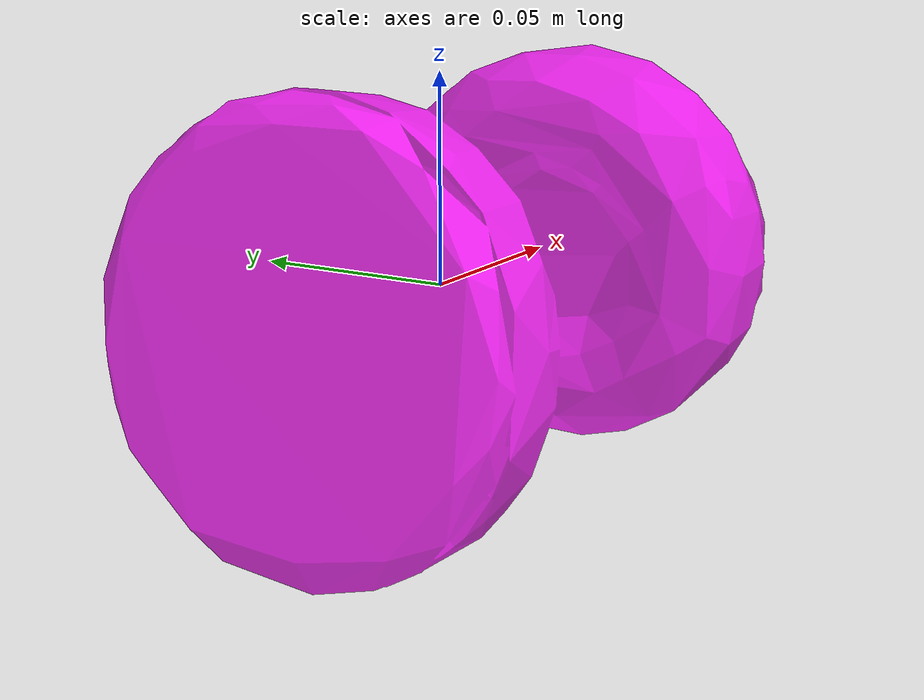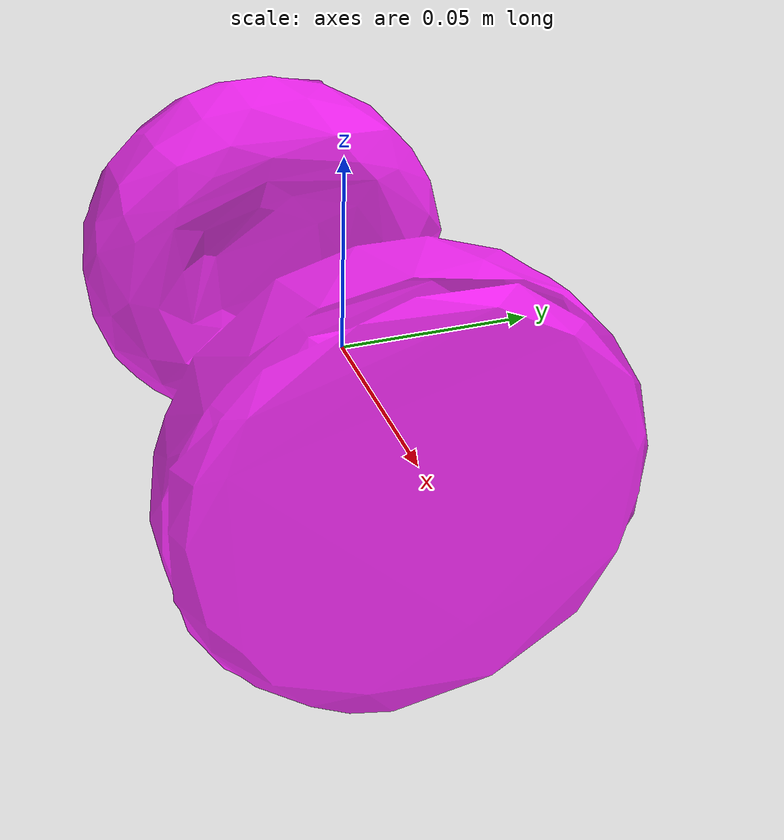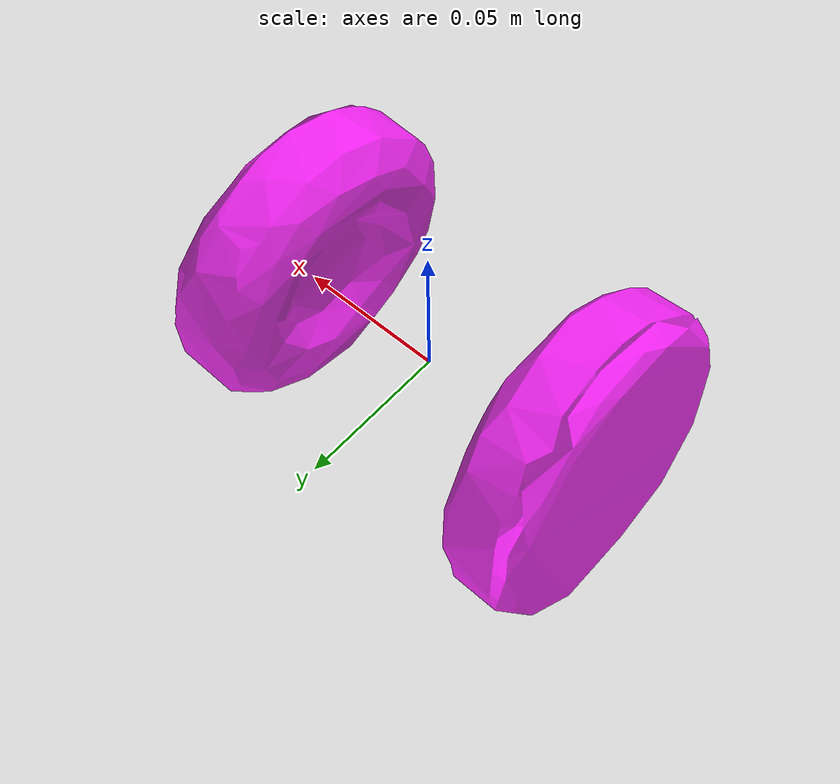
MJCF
<mujoco model="bottom_watertight_tiny">
  <default>
    <default group="2" type="mesh" contype="0" conaffinity="0">
      <geom group="2" type="mesh" contype="0" conaffinity="0"/>
    </default>
    <default group="3" type="mesh">
      <geom group="3" type="mesh"/>
    </default>
  </default>
  <asset>
    <mesh file="bottom_watertight_tiny.obj"/>
    <mesh file="bottom_watertight_tiny_collision_0.obj"/>
    <mesh file="bottom_watertight_tiny_collision_1.obj"/>
    <mesh file="bottom_watertight_tiny_collision_2.obj"/>
    <mesh file="bottom_watertight_tiny_collision_3.obj"/>
    <mesh file="bottom_watertight_tiny_collision_4.obj"/>
    <mesh file="bottom_watertight_tiny_collision_5.obj"/>
    <mesh file="bottom_watertight_tiny_collision_6.obj"/>
    <mesh file="bottom_watertight_tiny_collision_7.obj"/>
    <mesh file="bottom_watertight_tiny_collision_8.obj"/>
    <mesh file="bottom_watertight_tiny_collision_9.obj"/>
    <mesh file="bottom_watertight_tiny_collision_10.obj"/>
    <mesh file="bottom_watertight_tiny_collision_11.obj"/>
    <mesh file="bottom_watertight_tiny_collision_12.obj"/>
    <mesh file="bottom_watertight_tiny_collision_13.obj"/>
    <mesh file="bottom_watertight_tiny_collision_14.obj"/>
    <mesh file="bottom_watertight_tiny_collision_15.obj"/>
    <mesh file="bottom_watertight_tiny_collision_16.obj"/>
    <mesh file="bottom_watertight_tiny_collision_17.obj"/>
    <mesh file="bottom_watertight_tiny_collision_18.obj"/>
    <mesh file="bottom_watertight_tiny_collision_19.obj"/>
    <mesh file="bottom_watertight_tiny_collision_20.obj"/>
    <mesh file="bottom_watertight_tiny_collision_21.obj"/>
    <mesh file="bottom_watertight_tiny_collision_22.obj"/>
    <mesh file="bottom_watertight_tiny_collision_23.obj"/>
    <mesh file="bottom_watertight_tiny_collision_24.obj"/>
    <mesh file="bottom_watertight_tiny_collision_25.obj"/>
    <mesh file="bottom_watertight_tiny_collision_26.obj"/>
    <mesh file="bottom_watertight_tiny_collision_27.obj"/>
    <mesh file="bottom_watertight_tiny_collision_28.obj"/>
    <mesh file="bottom_watertight_tiny_collision_29.obj"/>
    <mesh file="bottom_watertight_tiny_collision_30.obj"/>
    <mesh file="bottom_watertight_tiny_collision_31.obj"/>
    <mesh file="bottom_watertight_tiny_collision_32.obj"/>
    <mesh file="bottom_watertight_tiny_collision_33.obj"/>
    <mesh file="bottom_watertight_tiny_collision_34.obj"/>
    <mesh file="bottom_watertight_tiny_collision_35.obj"/>
    <mesh file="bottom_watertight_tiny_collision_36.obj"/>
    <mesh file="bottom_watertight_tiny_collision_37.obj"/>
    <mesh file="bottom_watertight_tiny_collision_38.obj"/>
    <mesh file="bottom_watertight_tiny_collision_39.obj"/>
    <mesh file="bottom_watertight_tiny_collision_40.obj"/>
    <mesh file="bottom_watertight_tiny_collision_41.obj"/>
    <mesh file="bottom_watertight_tiny_collision_42.obj"/>
    <mesh file="bottom_watertight_tiny_collision_43.obj"/>
    <mesh file="bottom_watertight_tiny_collision_44.obj"/>
    <mesh file="bottom_watertight_tiny_collision_45.obj"/>
    <mesh file="bottom_watertight_tiny_collision_46.obj"/>
    <mesh file="bottom_watertight_tiny_collision_47.obj"/>
    <mesh file="bottom_watertight_tiny_collision_48.obj"/>
    <mesh file="bottom_watertight_tiny_collision_49.obj"/>
    <mesh file="bottom_watertight_tiny_collision_50.obj"/>
    <mesh file="bottom_watertight_tiny_collision_51.obj"/>
    <mesh file="bottom_watertight_tiny_collision_52.obj"/>
    <mesh file="bottom_watertight_tiny_collision_53.obj"/>
    <mesh file="bottom_watertight_tiny_collision_54.obj"/>
    <mesh file="bottom_watertight_tiny_collision_55.obj"/>
    <mesh file="bottom_watertight_tiny_collision_56.obj"/>
    <mesh file="bottom_watertight_tiny_collision_57.obj"/>
    <mesh file="bottom_watertight_tiny_collision_58.obj"/>
    <mesh file="bottom_watertight_tiny_collision_59.obj"/>
    <mesh file="bottom_watertight_tiny_collision_60.obj"/>
    <mesh file="bottom_watertight_tiny_collision_61.obj"/>
    <mesh file="bottom_watertight_tiny_collision_62.obj"/>
    <mesh file="bottom_watertight_tiny_collision_63.obj"/>
    <mesh file="bottom_watertight_tiny_collision_64.obj"/>
    <mesh file="bottom_watertight_tiny_collision_65.obj"/>
    <mesh file="bottom_watertight_tiny_collision_66.obj"/>
    <mesh file="bottom_watertight_tiny_collision_67.obj"/>
    <mesh file="bottom_watertight_tiny_collision_68.obj"/>
    <mesh file="bottom_watertight_tiny_collision_69.obj"/>
    <mesh file="bottom_watertight_tiny_collision_70.obj"/>
    <mesh file="bottom_watertight_tiny_collision_71.obj"/>
    <mesh file="bottom_watertight_tiny_collision_72.obj"/>
    <mesh file="bottom_watertight_tiny_collision_73.obj"/>
    <mesh file="bottom_watertight_tiny_collision_74.obj"/>
    <mesh file="bottom_watertight_tiny_collision_75.obj"/>
    <mesh file="bottom_watertight_tiny_collision_76.obj"/>
    <mesh file="bottom_watertight_tiny_collision_77.obj"/>
    <mesh file="bottom_watertight_tiny_collision_78.obj"/>
    <mesh file="bottom_watertight_tiny_collision_79.obj"/>
    <mesh file="bottom_watertight_tiny_collision_80.obj"/>
    <mesh file="bottom_watertight_tiny_collision_81.obj"/>
    <mesh file="bottom_watertight_tiny_collision_82.obj"/>
    <mesh file="bottom_watertight_tiny_collision_83.obj"/>
    <mesh file="bottom_watertight_tiny_collision_84.obj"/>
    <mesh file="bottom_watertight_tiny_collision_85.obj"/>
    <mesh file="bottom_watertight_tiny_collision_86.obj"/>
    <mesh file="bottom_watertight_tiny_collision_87.obj"/>
    <mesh file="bottom_watertight_tiny_collision_88.obj"/>
    <mesh file="bottom_watertight_tiny_collision_89.obj"/>
    <mesh file="bottom_watertight_tiny_collision_90.obj"/>
    <mesh file="bottom_watertight_tiny_collision_91.obj"/>
    <mesh file="bottom_watertight_tiny_collision_92.obj"/>
    <mesh file="bottom_watertight_tiny_collision_93.obj"/>
    <mesh file="bottom_watertight_tiny_collision_94.obj"/>
    <mesh file="bottom_watertight_tiny_collision_95.obj"/>
    <mesh file="bottom_watertight_tiny_collision_96.obj"/>
    <mesh file="bottom_watertight_tiny_collision_97.obj"/>
    <mesh file="bottom_watertight_tiny_collision_98.obj"/>
    <mesh file="bottom_watertight_tiny_collision_99.obj"/>
    <mesh file="bottom_watertight_tiny_collision_100.obj"/>
    <mesh file="bottom_watertight_tiny_collision_101.obj"/>
    <mesh file="bottom_watertight_tiny_collision_102.obj"/>
    <mesh file="bottom_watertight_tiny_collision_103.obj"/>
    <mesh file="bottom_watertight_tiny_collision_104.obj"/>
    <mesh file="bottom_watertight_tiny_collision_105.obj"/>
    <mesh file="bottom_watertight_tiny_collision_106.obj"/>
    <mesh file="bottom_watertight_tiny_collision_107.obj"/>
    <mesh file="bottom_watertight_tiny_collision_108.obj"/>
    <mesh file="bottom_watertight_tiny_collision_109.obj"/>
    <mesh file="bottom_watertight_tiny_collision_110.obj"/>
    <mesh file="bottom_watertight_tiny_collision_111.obj"/>
    <mesh file="bottom_watertight_tiny_collision_112.obj"/>
    <mesh file="bottom_watertight_tiny_collision_113.obj"/>
    <mesh file="bottom_watertight_tiny_collision_114.obj"/>
    <mesh file="bottom_watertight_tiny_collision_115.obj"/>
    <mesh file="bottom_watertight_tiny_collision_116.obj"/>
    <mesh file="bottom_watertight_tiny_collision_117.obj"/>
    <mesh file="bottom_watertight_tiny_collision_118.obj"/>
    <mesh file="bottom_watertight_tiny_collision_119.obj"/>
    <mesh file="bottom_watertight_tiny_collision_120.obj"/>
    <mesh file="bottom_watertight_tiny_collision_121.obj"/>
    <mesh file="bottom_watertight_tiny_collision_122.obj"/>
    <mesh file="bottom_watertight_tiny_collision_123.obj"/>
    <mesh file="bottom_watertight_tiny_collision_124.obj"/>
    <mesh file="bottom_watertight_tiny_collision_125.obj"/>
    <mesh file="bottom_watertight_tiny_collision_126.obj"/>
    <mesh file="bottom_watertight_tiny_collision_127.obj"/>
    <mesh file="bottom_watertight_tiny_collision_128.obj"/>
    <mesh file="bottom_watertight_tiny_collision_129.obj"/>
    <mesh file="bottom_watertight_tiny_collision_130.obj"/>
    <mesh file="bottom_watertight_tiny_collision_131.obj"/>
    <mesh file="bottom_watertight_tiny_collision_132.obj"/>
    <mesh file="bottom_watertight_tiny_collision_133.obj"/>
    <mesh file="bottom_watertight_tiny_collision_134.obj"/>
    <mesh file="bottom_watertight_tiny_collision_135.obj"/>
  </asset>
  <worldbody>
    <body name="bottom_watertight_tiny">
      <freejoint/>
      <geom mesh="bottom_watertight_tiny" group="2" type="mesh" rgba="1 0 1 0.8" contype="0" conaffinity="0"/>
      <geom mesh="bottom_watertight_tiny_collision_0" rgba="0.343983961661921 0.8265252202562995 0.13284787692748856 1" group="3" type="mesh"/>
      <geom mesh="bottom_watertight_tiny_collision_1" rgba="0.3194055916005605 0.8057906767615574 0.8803331639467502 1" group="3" type="mesh"/>
      <geom mesh="bottom_watertight_tiny_collision_2" rgba="0.7855915020937909 0.9714109539470092 0.8338949052306774 1" group="3" type="mesh"/>
      <geom mesh="bottom_watertight_tiny_collision_3" rgba="0.8930281943021798 0.05415432223553929 0.03153233702283886 1" group="3" type="mesh"/>
      <geom mesh="bottom_watertight_tiny_collision_4" rgba="0.08708408160782599 0.2864046861939905 0.2717874603109256 1" group="3" type="mesh"/>
      <geom mesh="bottom_watertight_tiny_collision_5" rgba="0.7207351785391303 0.6435978758937029 0.4643230739372236 1" group="3" type="mesh"/>
      <geom mesh="bottom_watertight_tiny_collision_6" rgba="0.3750963646015647 0.8725637275187305 0.7862124608952091 1" group="3" type="mesh"/>
      <geom mesh="bottom_watertight_tiny_collision_7" rgba="0.2613527370169043 0.9032502995505594 0.3412458997021669 1" group="3" type="mesh"/>
      <geom mesh="bottom_watertight_tiny_collision_8" rgba="0.35013783934831 0.6737606481972477 0.6890655871196877 1" group="3" type="mesh"/>
      <geom mesh="bottom_watertight_tiny_collision_9" rgba="0.04668471114255135 0.7795732560623482 0.7597667862949882 1" group="3" type="mesh"/>
      <geom mesh="bottom_watertight_tiny_collision_10" rgba="0.7688320833598374 0.329861286168055 0.7407011338129389 1" group="3" type="mesh"/>
      <geom mesh="bottom_watertight_tiny_collision_11" rgba="0.21427164311836255 0.13566087382938985 0.04009118134443135 1" group="3" type="mesh"/>
      <geom mesh="bottom_watertight_tiny_collision_12" rgba="0.9636389173730365 0.5011324578945223 0.6240546535725233 1" group="3" type="mesh"/>
      <geom mesh="bottom_watertight_tiny_collision_13" rgba="0.08919720477961357 0.9080392404710729 0.28706429121932875 1" group="3" type="mesh"/>
      <geom mesh="bottom_watertight_tiny_collision_14" rgba="0.03014970687095908 0.24169888326492206 0.3912231486107558 1" group="3" type="mesh"/>
      <geom mesh="bottom_watertight_tiny_collision_15" rgba="0.8986278561609606 0.37876300768715876 0.11162276914907787 1" group="3" type="mesh"/>
      <geom mesh="bottom_watertight_tiny_collision_16" rgba="0.15689793007886377 0.5676848878055039 0.3238288627020136 1" group="3" type="mesh"/>
      <geom mesh="bottom_watertight_tiny_collision_17" rgba="0.9685830070657376 0.0628198187548119 0.9488883277485496 1" group="3" type="mesh"/>
      <geom mesh="bottom_watertight_tiny_collision_18" rgba="0.5912275863034104 0.2908098157292448 0.26868654033489525 1" group="3" type="mesh"/>
      <geom mesh="bottom_watertight_tiny_collision_19" rgba="0.7176323415879392 0.557154299448974 0.7406940553999988 1" group="3" type="mesh"/>
      <geom mesh="bottom_watertight_tiny_collision_20" rgba="0.9841576436874294 0.4332284643496388 0.15638359361309306 1" group="3" type="mesh"/>
      <geom mesh="bottom_watertight_tiny_collision_21" rgba="0.6180613364201043 0.8198999623044012 0.2385574639140352 1" group="3" type="mesh"/>
      <geom mesh="bottom_watertight_tiny_collision_22" rgba="0.5967332002963099 0.891926396280934 0.6228813851339599 1" group="3" type="mesh"/>
      <geom mesh="bottom_watertight_tiny_collision_23" rgba="0.19547715709992475 0.7591739261729155 0.08604754322445529 1" group="3" type="mesh"/>
      <geom mesh="bottom_watertight_tiny_collision_24" rgba="0.9881510929176015 0.5748738801166149 0.46247548955789075 1" group="3" type="mesh"/>
      <geom mesh="bottom_watertight_tiny_collision_25" rgba="0.29468966582807155 0.6426619157699964 0.7095125326873261 1" group="3" type="mesh"/>
      <geom mesh="bottom_watertight_tiny_collision_26" rgba="0.20347465347506988 0.2511761597584564 0.3405812511413626 1" group="3" type="mesh"/>
      <geom mesh="bottom_watertight_tiny_collision_27" rgba="0.8918875804122384 0.929462734676355 0.4938376579568421 1" group="3" type="mesh"/>
      <geom mesh="bottom_watertight_tiny_collision_28" rgba="0.38147852034724394 0.6293185856104611 0.7201055217412289 1" group="3" type="mesh"/>
      <geom mesh="bottom_watertight_tiny_collision_29" rgba="0.7414846510346782 0.17562720039738045 0.48250096685291655 1" group="3" type="mesh"/>
      <geom mesh="bottom_watertight_tiny_collision_30" rgba="0.037205647956975785 0.10340449655801487 0.6615296692783991 1" group="3" type="mesh"/>
      <geom mesh="bottom_watertight_tiny_collision_31" rgba="0.9297801146355822 0.46801553846129074 0.2347411326234492 1" group="3" type="mesh"/>
      <geom mesh="bottom_watertight_tiny_collision_32" rgba="0.7420490912608247 0.09550641539302396 0.7304489483119625 1" group="3" type="mesh"/>
      <geom mesh="bottom_watertight_tiny_collision_33" rgba="0.9038308333753271 0.9420714528040767 0.844773614726547 1" group="3" type="mesh"/>
      <geom mesh="bottom_watertight_tiny_collision_34" rgba="0.42024829532081176 0.8448945812810347 0.6831909471245721 1" group="3" type="mesh"/>
      <geom mesh="bottom_watertight_tiny_collision_35" rgba="0.05427756847877907 0.42814089340868633 0.3926643461886279 1" group="3" type="mesh"/>
      <geom mesh="bottom_watertight_tiny_collision_36" rgba="0.7471367519218315 0.23319174011938604 0.22045243034629058 1" group="3" type="mesh"/>
      <geom mesh="bottom_watertight_tiny_collision_37" rgba="0.07522603507721615 0.8707260205058809 0.4994422474077431 1" group="3" type="mesh"/>
      <geom mesh="bottom_watertight_tiny_collision_38" rgba="0.6172914369171891 0.6508378482415212 0.45172850227155303 1" group="3" type="mesh"/>
      <geom mesh="bottom_watertight_tiny_collision_39" rgba="0.9185001559655113 0.8516851029942348 0.9420075317591242 1" group="3" type="mesh"/>
      <geom mesh="bottom_watertight_tiny_collision_40" rgba="0.034863621607103656 0.8782419890039975 0.9127873819220924 1" group="3" type="mesh"/>
      <geom mesh="bottom_watertight_tiny_collision_41" rgba="0.33120616220464527 0.8323354954987767 0.4498934354065097 1" group="3" type="mesh"/>
      <geom mesh="bottom_watertight_tiny_collision_42" rgba="0.49000874270299466 0.010144308319176232 0.8788787672628716 1" group="3" type="mesh"/>
      <geom mesh="bottom_watertight_tiny_collision_43" rgba="0.5752265849391425 0.5585089375048772 0.09215530008360273 1" group="3" type="mesh"/>
      <geom mesh="bottom_watertight_tiny_collision_44" rgba="0.7019140877193115 0.2298688722353629 0.17683810086558338 1" group="3" type="mesh"/>
      <geom mesh="bottom_watertight_tiny_collision_45" rgba="0.39298100881531073 0.3431067080501776 0.6496507542508466 1" group="3" type="mesh"/>
      <geom mesh="bottom_watertight_tiny_collision_46" rgba="0.5715024183196362 0.6397382500797486 0.5403481083438465 1" group="3" type="mesh"/>
      <geom mesh="bottom_watertight_tiny_collision_47" rgba="0.7305296258952038 0.5351263117981852 0.017336988743503867 1" group="3" type="mesh"/>
      <geom mesh="bottom_watertight_tiny_collision_48" rgba="0.05459667205951568 0.08834279104849097 0.5093282732739031 1" group="3" type="mesh"/>
      <geom mesh="bottom_watertight_tiny_collision_49" rgba="0.30103752217655566 0.7980337660127775 0.8251304310997974 1" group="3" type="mesh"/>
      <geom mesh="bottom_watertight_tiny_collision_50" rgba="0.3607437438385136 0.05134278481681287 0.08998311444777285 1" group="3" type="mesh"/>
      <geom mesh="bottom_watertight_tiny_collision_51" rgba="0.35423885947232514 0.27247573530469393 0.7289626229888108 1" group="3" type="mesh"/>
      <geom mesh="bottom_watertight_tiny_collision_52" rgba="0.370055666948351 0.9892515638785715 0.392899317711666 1" group="3" type="mesh"/>
      <geom mesh="bottom_watertight_tiny_collision_53" rgba="0.4044292570895527 0.47311105830389166 0.1388221328895045 1" group="3" type="mesh"/>
      <geom mesh="bottom_watertight_tiny_collision_54" rgba="0.09176018267660957 0.09339533799083477 0.4374945914822779 1" group="3" type="mesh"/>
      <geom mesh="bottom_watertight_tiny_collision_55" rgba="0.5461388532312813 0.016759595186619847 0.7254361092180271 1" group="3" type="mesh"/>
      <geom mesh="bottom_watertight_tiny_collision_56" rgba="0.1235489290474433 0.9108297872710988 0.45252421127716735 1" group="3" type="mesh"/>
      <geom mesh="bottom_watertight_tiny_collision_57" rgba="0.26495956018594147 0.3167515735302755 0.811385928390581 1" group="3" type="mesh"/>
      <geom mesh="bottom_watertight_tiny_collision_58" rgba="0.7341685185789193 0.3850037409557481 0.8095261439489876 1" group="3" type="mesh"/>
      <geom mesh="bottom_watertight_tiny_collision_59" rgba="0.452623311735038 0.6136775086241901 0.801542387412665 1" group="3" type="mesh"/>
      <geom mesh="bottom_watertight_tiny_collision_60" rgba="0.4986501059467717 0.021242144926344686 0.47719922416560734 1" group="3" type="mesh"/>
      <geom mesh="bottom_watertight_tiny_collision_61" rgba="0.131289195871634 0.02084726582356744 0.1890237123558176 1" group="3" type="mesh"/>
      <geom mesh="bottom_watertight_tiny_collision_62" rgba="0.07764451143493545 0.6218834774228826 0.509910569156977 1" group="3" type="mesh"/>
      <geom mesh="bottom_watertight_tiny_collision_63" rgba="0.5052857661489365 0.4067009790725342 0.5690731962195783 1" group="3" type="mesh"/>
      <geom mesh="bottom_watertight_tiny_collision_64" rgba="0.18385737515191836 0.4434461968688467 0.677160788574089 1" group="3" type="mesh"/>
      <geom mesh="bottom_watertight_tiny_collision_65" rgba="0.15133791833799848 0.9230941027242578 0.10735012138268951 1" group="3" type="mesh"/>
      <geom mesh="bottom_watertight_tiny_collision_66" rgba="0.5099988959236318 0.07698933820598042 0.0850779869125019 1" group="3" type="mesh"/>
      <geom mesh="bottom_watertight_tiny_collision_67" rgba="0.167397893186229 0.8218893867466305 0.9545686591057811 1" group="3" type="mesh"/>
      <geom mesh="bottom_watertight_tiny_collision_68" rgba="0.8069877112675083 0.5945218555556843 0.6346009905650394 1" group="3" type="mesh"/>
      <geom mesh="bottom_watertight_tiny_collision_69" rgba="0.31376348952320066 0.1300711560650457 0.7654040944051737 1" group="3" type="mesh"/>
      <geom mesh="bottom_watertight_tiny_collision_70" rgba="0.252749179030194 0.9084643273155428 0.4321187457033001 1" group="3" type="mesh"/>
      <geom mesh="bottom_watertight_tiny_collision_71" rgba="0.6443258537093467 0.947664783877765 0.6854675973528076 1" group="3" type="mesh"/>
      <geom mesh="bottom_watertight_tiny_collision_72" rgba="0.8873241535690932 0.9562115097711552 0.9376440791565502 1" group="3" type="mesh"/>
      <geom mesh="bottom_watertight_tiny_collision_73" rgba="0.8492830563653951 0.21282425983235942 0.45980272035196545 1" group="3" type="mesh"/>
      <geom mesh="bottom_watertight_tiny_collision_74" rgba="0.6066571561413728 0.62725432484941 0.2973354717655846 1" group="3" type="mesh"/>
      <geom mesh="bottom_watertight_tiny_collision_75" rgba="0.9141105639467875 0.4404567878436273 0.8534746495232746 1" group="3" type="mesh"/>
      <geom mesh="bottom_watertight_tiny_collision_76" rgba="0.9719167992671613 0.4972695560742739 0.8234460186802197 1" group="3" type="mesh"/>
      <geom mesh="bottom_watertight_tiny_collision_77" rgba="0.6928089461263429 0.40925381874516653 0.3895107509980198 1" group="3" type="mesh"/>
      <geom mesh="bottom_watertight_tiny_collision_78" rgba="0.5554193998854674 0.6098015098208202 0.7165191012465035 1" group="3" type="mesh"/>
      <geom mesh="bottom_watertight_tiny_collision_79" rgba="0.04649745578972109 0.6192924444221228 0.03448541996185883 1" group="3" type="mesh"/>
      <geom mesh="bottom_watertight_tiny_collision_80" rgba="0.5067363067447064 0.43091404213856865 0.2944141459135097 1" group="3" type="mesh"/>
      <geom mesh="bottom_watertight_tiny_collision_81" rgba="0.05373044386657322 0.31160853478220085 0.6704817983799953 1" group="3" type="mesh"/>
      <geom mesh="bottom_watertight_tiny_collision_82" rgba="0.04311798590876981 0.3404953875303851 0.47649416892334706 1" group="3" type="mesh"/>
      <geom mesh="bottom_watertight_tiny_collision_83" rgba="0.6326948969439136 0.12942544244269094 0.6520854243172629 1" group="3" type="mesh"/>
      <geom mesh="bottom_watertight_tiny_collision_84" rgba="0.17132317517340045 0.04931769964823984 0.9899046865843792 1" group="3" type="mesh"/>
      <geom mesh="bottom_watertight_tiny_collision_85" rgba="0.1549655274567927 0.6967942226159801 0.3333350089326965 1" group="3" type="mesh"/>
      <geom mesh="bottom_watertight_tiny_collision_86" rgba="0.13471145517938732 0.1020746715655848 0.4260935085994072 1" group="3" type="mesh"/>
      <geom mesh="bottom_watertight_tiny_collision_87" rgba="0.03046985357123333 0.6933891060188054 0.7455132172539455 1" group="3" type="mesh"/>
      <geom mesh="bottom_watertight_tiny_collision_88" rgba="0.8381630428225416 0.32636849136945045 0.02127926089858312 1" group="3" type="mesh"/>
      <geom mesh="bottom_watertight_tiny_collision_89" rgba="0.1752996313613855 0.02735742831406529 0.939836424503685 1" group="3" type="mesh"/>
      <geom mesh="bottom_watertight_tiny_collision_90" rgba="0.33392152990768853 0.028249497761380082 0.7503062748366564 1" group="3" type="mesh"/>
      <geom mesh="bottom_watertight_tiny_collision_91" rgba="0.4998629175779946 0.39074904686220135 0.5940266049946968 1" group="3" type="mesh"/>
      <geom mesh="bottom_watertight_tiny_collision_92" rgba="0.2125725490200705 0.7228324905808494 0.803042290339224 1" group="3" type="mesh"/>
      <geom mesh="bottom_watertight_tiny_collision_93" rgba="0.7770566745734663 0.8296294703692659 0.20665387500863142 1" group="3" type="mesh"/>
      <geom mesh="bottom_watertight_tiny_collision_94" rgba="0.3306356814870398 0.2258652585050197 0.08399257260029025 1" group="3" type="mesh"/>
      <geom mesh="bottom_watertight_tiny_collision_95" rgba="0.8367592890466918 0.5605388375140964 0.21517779638215662 1" group="3" type="mesh"/>
      <geom mesh="bottom_watertight_tiny_collision_96" rgba="0.7973260869962162 0.4008275190138747 0.5199815595204811 1" group="3" type="mesh"/>
      <geom mesh="bottom_watertight_tiny_collision_97" rgba="0.07549639355581339 0.7468493549706224 0.18433331117459328 1" group="3" type="mesh"/>
      <geom mesh="bottom_watertight_tiny_collision_98" rgba="0.49780226960015905 0.6032786727648081 0.1924597449833494 1" group="3" type="mesh"/>
      <geom mesh="bottom_watertight_tiny_collision_99" rgba="0.5568411461784792 0.3053992537486627 0.4915364287033164 1" group="3" type="mesh"/>
      <geom mesh="bottom_watertight_tiny_collision_100" rgba="0.44408317578626866 0.08842204140835164 0.4103265602406415 1" group="3" type="mesh"/>
      <geom mesh="bottom_watertight_tiny_collision_101" rgba="0.37642656251731677 0.2591800206851542 0.5254722152431238 1" group="3" type="mesh"/>
      <geom mesh="bottom_watertight_tiny_collision_102" rgba="0.7466041389946468 0.6794616069244752 0.07916414547749906 1" group="3" type="mesh"/>
      <geom mesh="bottom_watertight_tiny_collision_103" rgba="0.07771381230671437 0.31082684874670374 0.42278551592135294 1" group="3" type="mesh"/>
      <geom mesh="bottom_watertight_tiny_collision_104" rgba="0.4656591852629982 0.16110187554361433 0.7917356009530485 1" group="3" type="mesh"/>
      <geom mesh="bottom_watertight_tiny_collision_105" rgba="0.8111642557695391 0.6002134073192904 0.4809402999442465 1" group="3" type="mesh"/>
      <geom mesh="bottom_watertight_tiny_collision_106" rgba="0.39330483513549563 0.05731984852749661 0.724913023147893 1" group="3" type="mesh"/>
      <geom mesh="bottom_watertight_tiny_collision_107" rgba="0.8650385829468428 0.8212099551085483 0.09375200555698993 1" group="3" type="mesh"/>
      <geom mesh="bottom_watertight_tiny_collision_108" rgba="0.362269472958751 0.36557584575585067 0.37966914132536833 1" group="3" type="mesh"/>
      <geom mesh="bottom_watertight_tiny_collision_109" rgba="0.6837782049809514 0.7569218108013136 0.7500872897948806 1" group="3" type="mesh"/>
      <geom mesh="bottom_watertight_tiny_collision_110" rgba="0.06634898358174313 0.3881423434775272 0.1620363495209176 1" group="3" type="mesh"/>
      <geom mesh="bottom_watertight_tiny_collision_111" rgba="0.22812405060895258 0.7644438366293128 0.0801647217006447 1" group="3" type="mesh"/>
      <geom mesh="bottom_watertight_tiny_collision_112" rgba="0.5235514804194696 0.7750603721455835 0.8188376170123333 1" group="3" type="mesh"/>
      <geom mesh="bottom_watertight_tiny_collision_113" rgba="0.019469849768637304 0.339076767015421 0.3059235798137484 1" group="3" type="mesh"/>
      <geom mesh="bottom_watertight_tiny_collision_114" rgba="0.7142293598171261 0.012545141902627455 0.9341116303573537 1" group="3" type="mesh"/>
      <geom mesh="bottom_watertight_tiny_collision_115" rgba="0.9535606939531343 0.5919021775227225 0.7923585233901519 1" group="3" type="mesh"/>
      <geom mesh="bottom_watertight_tiny_collision_116" rgba="0.1606251869787405 0.5281831776242232 0.2866365552674639 1" group="3" type="mesh"/>
      <geom mesh="bottom_watertight_tiny_collision_117" rgba="0.9815903813632405 0.26124649485462903 0.9861540858834384 1" group="3" type="mesh"/>
      <geom mesh="bottom_watertight_tiny_collision_118" rgba="0.9411832586941719 0.9238337276209665 0.005220150010616598 1" group="3" type="mesh"/>
      <geom mesh="bottom_watertight_tiny_collision_119" rgba="0.8139768834857664 0.7822351643672874 0.1491629056348338 1" group="3" type="mesh"/>
      <geom mesh="bottom_watertight_tiny_collision_120" rgba="0.5862756975061423 0.32675434030573103 0.03704139739995993 1" group="3" type="mesh"/>
      <geom mesh="bottom_watertight_tiny_collision_121" rgba="0.922226672897054 0.838614093415591 0.39195697633917737 1" group="3" type="mesh"/>
      <geom mesh="bottom_watertight_tiny_collision_122" rgba="0.4737516825129918 0.5178145737433792 0.22890269008622 1" group="3" type="mesh"/>
      <geom mesh="bottom_watertight_tiny_collision_123" rgba="0.6863919888027747 0.3228181125970453 0.5457025347453524 1" group="3" type="mesh"/>
      <geom mesh="bottom_watertight_tiny_collision_124" rgba="0.7955264674828039 0.5446923131523423 0.7627171981886471 1" group="3" type="mesh"/>
      <geom mesh="bottom_watertight_tiny_collision_125" rgba="0.8623708508233127 0.9907235226298313 0.9798631203851209 1" group="3" type="mesh"/>
      <geom mesh="bottom_watertight_tiny_collision_126" rgba="0.5790965429628854 0.9127643412454346 0.249128149959574 1" group="3" type="mesh"/>
      <geom mesh="bottom_watertight_tiny_collision_127" rgba="0.5297062473156927 0.5754706765869922 0.9760156887140093 1" group="3" type="mesh"/>
      <geom mesh="bottom_watertight_tiny_collision_128" rgba="0.9304539920971842 0.0626842578970247 0.3070646243243782 1" group="3" type="mesh"/>
      <geom mesh="bottom_watertight_tiny_collision_129" rgba="0.3435146158369017 0.35025323173301204 0.9926928331574109 1" group="3" type="mesh"/>
      <geom mesh="bottom_watertight_tiny_collision_130" rgba="0.5793053590492788 0.8228920840625863 0.3505739023047345 1" group="3" type="mesh"/>
      <geom mesh="bottom_watertight_tiny_collision_131" rgba="0.4764692532422887 0.26855758191785883 0.7170939510451222 1" group="3" type="mesh"/>
      <geom mesh="bottom_watertight_tiny_collision_132" rgba="0.1072736370161379 0.39611245515577664 0.8854953449669796 1" group="3" type="mesh"/>
      <geom mesh="bottom_watertight_tiny_collision_133" rgba="0.3882493443375613 0.4463379829932964 0.3760798122412803 1" group="3" type="mesh"/>
      <geom mesh="bottom_watertight_tiny_collision_134" rgba="0.771162732150595 0.2618067191059107 0.17723379388264515 1" group="3" type="mesh"/>
      <geom mesh="bottom_watertight_tiny_collision_135" rgba="0.3290816305518931 0.7759961774610267 0.15186666918035108 1" group="3" type="mesh"/>
    </body>
  </worldbody>
</mujoco>
